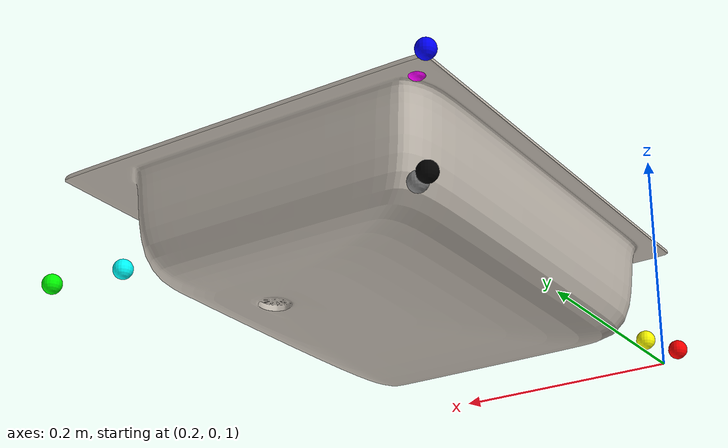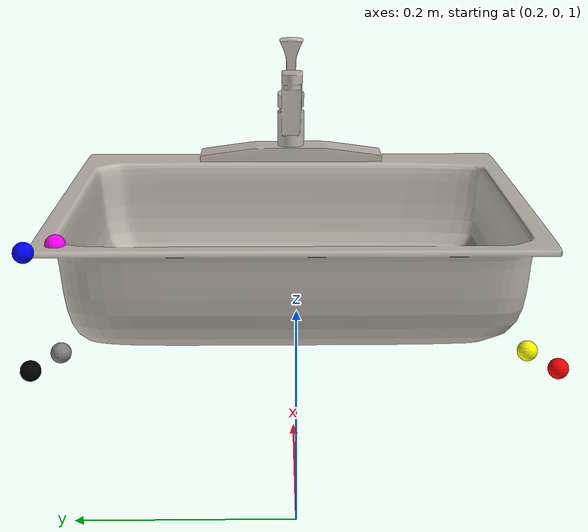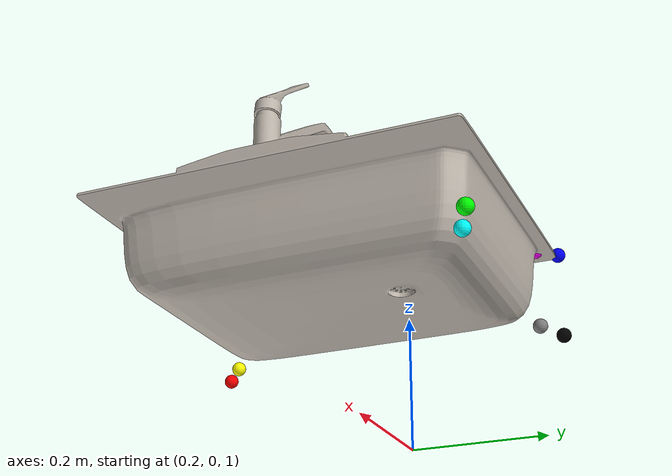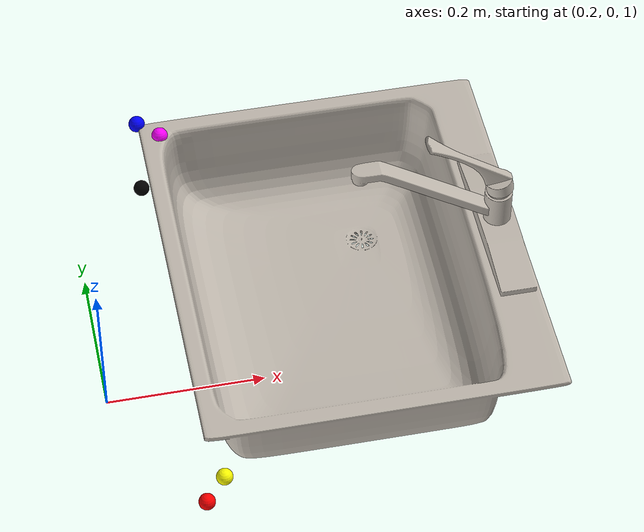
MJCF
<mujoco model="model">
  <compiler angle="radian"/>
  <asset>
    <texture type="2d" name="sink_tap_image0" file="../objects/bigym/sink_tap/visuals/image0.png"/>
    <material name="kitchen_sink" texture="sink_tap_image0" specular="0.5" shininess="0.25"/>
    <mesh file="../objects/bigym/sink_tap/visuals/model_0.obj" name="sink_tap_model_0_vis" scale="0.5 0.5 0.5"/>
    <mesh file="../objects/bigym/sink_tap/visuals/spout_0.obj" name="spout_0_vis" scale="0.5 0.5 0.5"/>
    <mesh file="../objects/bigym/sink_tap/visuals/handle_0.obj" name="sink_tap_handle_0_vis" scale="0.5 0.5 0.5"/>
  </asset>
  <default>
    <default class="sink_tap_visual">
      <geom conaffinity="0" contype="0" group="1" type="mesh"/>
    </default>
    <default class="sink_tap_collision">
      <geom group="0" rgba="0.5 0 0 0"/>
    </default>
  </default>
  <worldbody>
    <body name="sink_tap" pos="0.50 0 1.24" quat="0.707 0 0 -0.707" >
      <!-- exterior bounding box points -->
      <site rgba="0 0 0 1" size="0.01" pos="-0.25 -0.2125 -0.13075" name="sink_tap_ext_p0"/>
      <site rgba="1 0 0 1" size="0.01" pos="0.25 -0.2125 -0.13075" name="sink_tap_ext_px"/>
      <site rgba="0 1 0 1" size="0.01" pos="-0.25 0.2125 -0.13075" name="sink_tap_ext_py"/>
      <site rgba="0 0 1 1" size="0.01" pos="-0.25 -0.2125 -0.014" name="sink_tap_ext_pz"/>
      <!-- interior bounding box points -->
      <site rgba="0.5 0.5 0.5 1" size="0.01" pos="-0.225 -0.1875 -0.1225" name="sink_tap_int_p0"/>
      <site rgba="1 1 0 1" size="0.01" pos="0.225 -0.1875 -0.1225" name="sink_tap_int_px"/>
      <site rgba="0 1 1 1" size="0.01" pos="-0.225 0.145 -0.1225" name="sink_tap_int_py"/>
      <site rgba="1 0 1 1" size="0.01" pos="-0.225 -0.1875 -0.014" name="sink_tap_int_pz"/>
      <body name="tap_object">
        <geom solimp="0.998 0.998 0.001" solref="0.001 1" density="100" friction="0.95 0.3 0.1" type="mesh" mesh="sink_tap_model_0_vis" material="kitchen_sink" class="sink_tap_visual"/>
        <!-- Bottom -->
        <geom class="sink_tap_collision" type="box" pos="0 -0.02 -0.13" size="0.21 0.16 0.0075" name="bottom"/>
        <!-- Left Wall -->
        <geom class="sink_tap_collision" type="box" pos="-0.225 -0.02 -0.0725" size="0.0075 0.16 0.06" axisangle="0 1 0 -0.17"/>
        <!-- Right Wall -->
        <geom class="sink_tap_collision" type="box" pos="0.225 -0.02 -0.0725" size="0.0075 0.16 0.06" axisangle="0 1 0 0.17"/>
        <!-- Back Wall -->
        <geom class="sink_tap_collision" type="box" pos="0 0.145 -0.0725" size="0.23 0.0075 0.06" axisangle="1 0 0 -0.10"/>
        <!-- Front Wall -->
        <geom class="sink_tap_collision" type="box" pos="0 -0.1875 -0.0725" size="0.23 0.0075 0.06" axisangle="1 0 0 0.10"/>
        <!-- Back Ledge -->
        <geom class="sink_tap_collision" type="box" pos="0 0.178 -0.0175" size="0.25 0.034 0.0035"/>
        <!-- Front Ledge -->
        <geom class="sink_tap_collision" type="box" pos="0 -0.2025 -0.0175" size="0.25 0.01 0.0035"/>
        <!-- Right Ledge -->
        <geom class="sink_tap_collision" type="box" pos="0.24 0 -0.0175" size="0.01 0.2 0.0035"/>
        <!-- Left Ledge -->
        <geom class="sink_tap_collision" type="box" pos="-0.24 0 -0.0175" size="0.01 0.2 0.0035"/>
        <!-- Faucet Base -->
        <geom class="sink_tap_collision" type="box" pos="0 0.184 -0.00585" size="0.111 0.0223 0.00825"/>
        <body name="spout">
          <joint axis="0 0 1" limited="true" name="spout_joint" range="-1.57 1.57" pos="0 0.184 0.0225" armature="2" damping="10"/>
          <geom solimp="0.998 0.998 0.001" solref="0.001 1" density="100" friction="0.95 0.3 0.1" type="mesh" mesh="spout_0_vis" material="kitchen_sink" class="sink_tap_visual"/>
          <geom class="sink_tap_collision" type="cylinder" pos="0 0.184 0.0225" size="0.017 0.017 0"/>
          <geom class="sink_tap_collision" type="box" pos="0 0.025 0.11" size="0.0115 0.0195 0.006"/>
          <geom class="sink_tap_collision" type="cylinder" pos="0 0.01675 0.10125" size="0.01 0.00275 0"/>
        </body>
        <body name="handle">
          <joint axis="-1 0 0" limited="true" type="hinge" name="handle_joint" range="0 0.26" pos="0 0.184 0.055" armature="2" damping="10"/>
          <joint axis="0 0 1" limited="true" type="hinge" name="handle_temp_joint" range="-0.395 0.395" pos="0 0.184 0.05825" armature="2" damping="10"/>
          <geom solimp="0.998 0.998 0.001" solref="0.001 1" density="100" friction="0.95 0.3 0.1" type="mesh" mesh="sink_tap_handle_0_vis" material="kitchen_sink" class="sink_tap_visual"/>
          <geom class="sink_tap_collision" type="box" pos="0 0.1465 0.104" size="0.0115 0.065 0.00325" axisangle="1 0 0 -0.63" name="handle_main"/>
        </body>
      </body>
    </body>
  </worldbody>
</mujoco>
